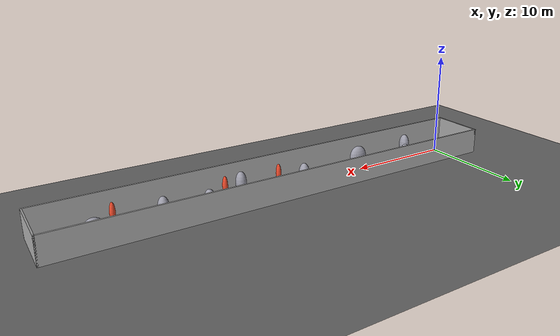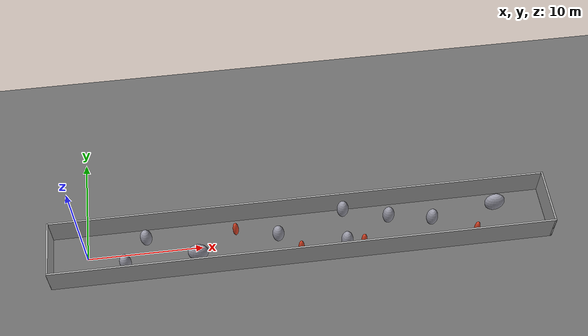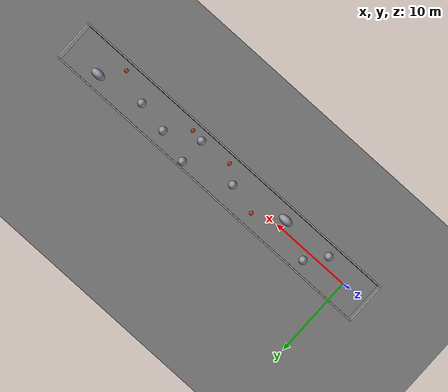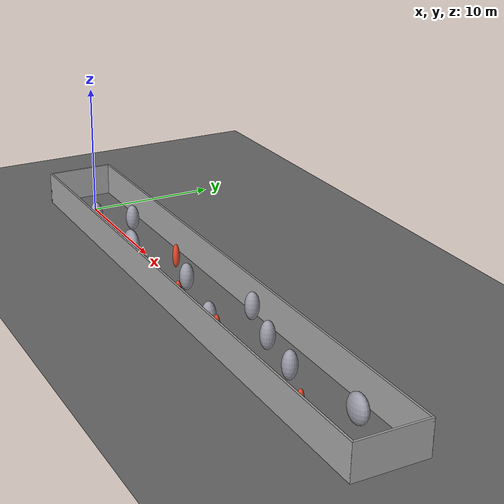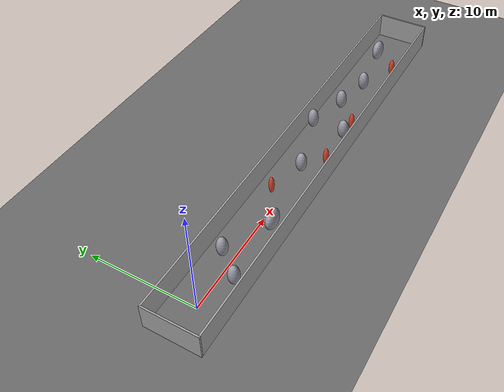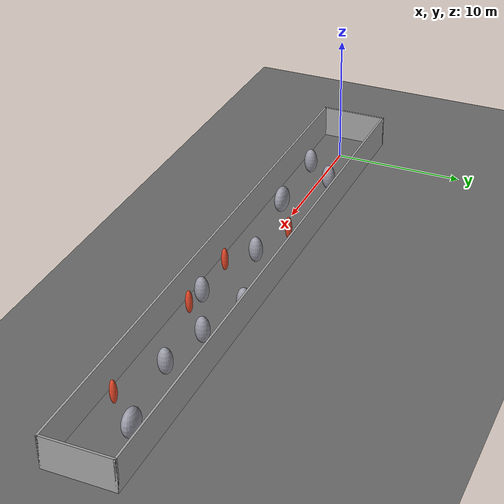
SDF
<?xml version="1.0"?>
<sdf version="1.10">
  <world name="my_rgl_corridor_dynamic_4">

    <plugin filename="gz-sim-physics-system" name="gz::sim::systems::Physics"/>
    <plugin filename="gz-sim-user-commands-system" name="gz::sim::systems::UserCommands"/>
    <plugin filename="gz-sim-scene-broadcaster-system" name="gz::sim::systems::SceneBroadcaster"/>
    <plugin filename="gz-sim-contact-system" name="gz::sim::systems::Contact"/>
    <plugin filename="gz-sim-imu-system" name="gz::sim::systems::Imu"/>
    <plugin filename="gz-sim-air-pressure-system" name="gz::sim::systems::AirPressure"/>
    <plugin filename="gz-sim-navsat-system" name="gz::sim::systems::NavSat"/>
    <plugin filename="gz-sim-magnetometer-system" name="gz::sim::systems::Magnetometer"/>
    <plugin filename="gz-sim-sensors-system" name="gz::sim::systems::Sensors">
      <render_engine>ogre2</render_engine>
    </plugin>
    <plugin filename="RGLServerPluginManager" name="rgl::RGLServerPluginManager">
      <do_ignore_entities_in_lidar_link>true</do_ignore_entities_in_lidar_link>
    </plugin>

    <physics name="ifds_250hz" type="ode">
      <max_step_size>0.004</max_step_size>
      <real_time_factor>1.0</real_time_factor>
      <real_time_update_rate>250</real_time_update_rate>
    </physics>
    <gravity>0 0 -9.8</gravity>
    <magnetic_field>6e-06 2.3e-05 -4.2e-05</magnetic_field>
    <atmosphere type="adiabatic"/>
    <scene>
      <grid>false</grid><ambient>0.4 0.4 0.4 1</ambient>
      <background>0.7 0.7 0.7 1</background><shadows>true</shadows>
    </scene>
    <light name="sun" type="directional">
      <pose>20 0 50 0 0 0</pose><cast_shadows>true</cast_shadows>
      <diffuse>0.9 0.9 0.9 1</diffuse><specular>0.2 0.2 0.2 1</specular>
      <direction>-0.4 0.2 -0.9</direction>
    </light>
    <model name="ground_plane">
      <static>true</static>
      <link name="link">
        <collision name="collision"><geometry><plane><normal>0 0 1</normal><size>100 100</size></plane></geometry></collision>
        <visual name="visual">
          <geometry><plane><normal>0 0 1</normal><size>100 100</size></plane></geometry>
          <material><ambient>0.30 0.30 0.30 1</ambient><diffuse>0.42 0.42 0.42 1</diffuse></material>
        </visual>
      </link>
    </model>

    <!-- Extended CERLAB corridor envelope: 43.725 m long, 5.15 m wide and 2.5 m high. -->

    <model name="corridor_wall_left">
      <static>true</static>
      <pose>18.7125 2.5 1.25 0 0 0</pose>
      <link name="link">
        <collision name="collision"><geometry><box><size>43.725 0.15 2.5</size></box></geometry></collision>
        <visual name="visual">
          <geometry><box><size>43.725 0.15 2.5</size></box></geometry>
          <material><ambient>0.55 0.55 0.55 1</ambient><diffuse>0.65 0.65 0.65 1</diffuse></material>
        </visual>
      </link>
    </model>

    <model name="corridor_wall_right">
      <static>true</static>
      <pose>18.7125 -2.5 1.25 0 0 0</pose>
      <link name="link">
        <collision name="collision"><geometry><box><size>43.725 0.15 2.5</size></box></geometry></collision>
        <visual name="visual">
          <geometry><box><size>43.725 0.15 2.5</size></box></geometry>
          <material><ambient>0.55 0.55 0.55 1</ambient><diffuse>0.65 0.65 0.65 1</diffuse></material>
        </visual>
      </link>
    </model>

    <model name="corridor_wall_start">
      <static>true</static>
      <pose>-3.075 0 1.25 0 0 0</pose>
      <link name="link">
        <collision name="collision"><geometry><box><size>0.15 5.15 2.5</size></box></geometry></collision>
        <visual name="visual">
          <geometry><box><size>0.15 5.15 2.5</size></box></geometry>
          <material><ambient>0.55 0.55 0.55 1</ambient><diffuse>0.65 0.65 0.65 1</diffuse></material>
        </visual>
      </link>
    </model>

    <model name="corridor_wall_end">
      <static>true</static>
      <pose>40.5 0 1.25 0 0 0</pose>
      <link name="link">
        <collision name="collision"><geometry><box><size>0.15 5.15 2.5</size></box></geometry></collision>
        <visual name="visual">
          <geometry><box><size>0.15 5.15 2.5</size></box></geometry>
          <material><ambient>0.55 0.55 0.55 1</ambient><diffuse>0.65 0.65 0.65 1</diffuse></material>
        </visual>
      </link>
    </model>

    <!-- CERLAB static boxes represented by smooth, bounding-size ellipsoids. -->

    <model name="static_obstacle_1">
      <static>true</static>
      <pose>3.32173 -1.210448 1.0 0 0 0</pose>
      <link name="link">
        <collision name="collision">
          <geometry><ellipsoid><radii>0.505 0.5 1.0</radii></ellipsoid></geometry>
        </collision>
        <visual name="visual">
          <geometry><ellipsoid><radii>0.505 0.5 1.0</radii></ellipsoid></geometry>
          <material><ambient>0.48 0.48 0.52 1</ambient><diffuse>0.60 0.60 0.65 1</diffuse></material>
        </visual>
      </link>
    </model>

    <model name="static_obstacle_2">
      <static>true</static>
      <pose>5.19162 1.03199 1.0 0 0 0</pose>
      <link name="link">
        <collision name="collision">
          <geometry><ellipsoid><radii>0.505 0.5 1.0</radii></ellipsoid></geometry>
        </collision>
        <visual name="visual">
          <geometry><ellipsoid><radii>0.505 0.5 1.0</radii></ellipsoid></geometry>
          <material><ambient>0.48 0.48 0.52 1</ambient><diffuse>0.60 0.60 0.65 1</diffuse></material>
        </visual>
      </link>
    </model>

    <model name="static_obstacle_3">
      <static>true</static>
      <pose>9.5971 -0.991291 1.0 0 0 0</pose>
      <link name="link">
        <collision name="collision">
          <geometry><ellipsoid><radii>0.9 0.5 1.0</radii></ellipsoid></geometry>
        </collision>
        <visual name="visual">
          <geometry><ellipsoid><radii>0.9 0.5 1.0</radii></ellipsoid></geometry>
          <material><ambient>0.48 0.48 0.52 1</ambient><diffuse>0.60 0.60 0.65 1</diffuse></material>
        </visual>
      </link>
    </model>

    <model name="static_obstacle_4">
      <static>true</static>
      <pose>16.6517 0.03953 1.0 0 0 0</pose>
      <link name="link">
        <collision name="collision">
          <geometry><ellipsoid><radii>0.505 0.5 1.0</radii></ellipsoid></geometry>
        </collision>
        <visual name="visual">
          <geometry><ellipsoid><radii>0.505 0.5 1.0</radii></ellipsoid></geometry>
          <material><ambient>0.48 0.48 0.52 1</ambient><diffuse>0.60 0.60 0.65 1</diffuse></material>
        </visual>
      </link>
    </model>

    <model name="static_obstacle_5">
      <static>true</static>
      <pose>22.5281 -1.287008 1.0 0 0 0</pose>
      <link name="link">
        <collision name="collision">
          <geometry><ellipsoid><radii>0.505 0.5 1.0</radii></ellipsoid></geometry>
        </collision>
        <visual name="visual">
          <geometry><ellipsoid><radii>0.505 0.5 1.0</radii></ellipsoid></geometry>
          <material><ambient>0.48 0.48 0.52 1</ambient><diffuse>0.60 0.60 0.65 1</diffuse></material>
        </visual>
      </link>
    </model>

    <model name="static_obstacle_6">
      <static>true</static>
      <pose>22.5815 1.86 1.0 0 0 0</pose>
      <link name="link">
        <collision name="collision">
          <geometry><ellipsoid><radii>0.505 0.5 1.0</radii></ellipsoid></geometry>
        </collision>
        <visual name="visual">
          <geometry><ellipsoid><radii>0.505 0.5 1.0</radii></ellipsoid></geometry>
          <material><ambient>0.48 0.48 0.52 1</ambient><diffuse>0.60 0.60 0.65 1</diffuse></material>
        </visual>
      </link>
    </model>

    <model name="static_obstacle_7">
      <static>true</static>
      <pose>26.5002 0.75131 1.0 0 0 0</pose>
      <link name="link">
        <collision name="collision">
          <geometry><ellipsoid><radii>0.505 0.5 1.0</radii></ellipsoid></geometry>
        </collision>
        <visual name="visual">
          <geometry><ellipsoid><radii>0.505 0.5 1.0</radii></ellipsoid></geometry>
          <material><ambient>0.48 0.48 0.52 1</ambient><diffuse>0.60 0.60 0.65 1</diffuse></material>
        </visual>
      </link>
    </model>

    <model name="static_obstacle_8">
      <static>true</static>
      <pose>30.2832 0.06 1.0 0 0 0</pose>
      <link name="link">
        <collision name="collision">
          <geometry><ellipsoid><radii>0.505 0.5 1.0</radii></ellipsoid></geometry>
        </collision>
        <visual name="visual">
          <geometry><ellipsoid><radii>0.505 0.5 1.0</radii></ellipsoid></geometry>
          <material><ambient>0.48 0.48 0.52 1</ambient><diffuse>0.60 0.60 0.65 1</diffuse></material>
        </visual>
      </link>
    </model>

    <model name="static_obstacle_9">
      <static>true</static>
      <pose>36.0874 0.92218 1.0 0 0 0</pose>
      <link name="link">
        <collision name="collision">
          <geometry><ellipsoid><radii>0.9 0.5 1.0</radii></ellipsoid></geometry>
        </collision>
        <visual name="visual">
          <geometry><ellipsoid><radii>0.9 0.5 1.0</radii></ellipsoid></geometry>
          <material><ambient>0.48 0.48 0.52 1</ambient><diffuse>0.60 0.60 0.65 1</diffuse></material>
        </visual>
      </link>
    </model>

    <!-- The four retained CERLAB actors use center-height poses for ellipsoids. -->

    <model name="dynamic_obstacle_3">
      <static>false</static>
      <pose>13 1 0.9 0 0 0</pose>
      <link name="link">
        <kinematic>true</kinematic>
        <gravity>false</gravity>
        <collision name="collision">
          <geometry><ellipsoid><radii>0.25 0.25 0.9</radii></ellipsoid></geometry>
        </collision>
        <visual name="visual">
          <geometry><ellipsoid><radii>0.25 0.25 0.9</radii></ellipsoid></geometry>
          <material><ambient>0.75 0.20 0.12 1</ambient><diffuse>0.90 0.28 0.16 1</diffuse></material>
        </visual>
      </link>
      <plugin filename="libifds_obstacle_path.so" name="ifds::sim::ObstaclePath">
        <start>13 1 0.9</start>
        <end>13 -1 0.9</end>
        <velocity>0.5</velocity>
      </plugin>
    </model>

    <model name="dynamic_obstacle_5">
      <static>false</static>
      <pose>18.5 -1.5 0.9 0 0 0</pose>
      <link name="link">
        <kinematic>true</kinematic>
        <gravity>false</gravity>
        <collision name="collision">
          <geometry><ellipsoid><radii>0.25 0.25 0.9</radii></ellipsoid></geometry>
        </collision>
        <visual name="visual">
          <geometry><ellipsoid><radii>0.25 0.25 0.9</radii></ellipsoid></geometry>
          <material><ambient>0.75 0.20 0.12 1</ambient><diffuse>0.90 0.28 0.16 1</diffuse></material>
        </visual>
      </link>
      <plugin filename="libifds_obstacle_path.so" name="ifds::sim::ObstaclePath">
        <start>18.5 -1.5 0.9</start>
        <end>18.5 1.5 0.9</end>
        <velocity>0.5</velocity>
      </plugin>
    </model>

    <model name="dynamic_obstacle_6">
      <static>false</static>
      <pose>24 -1.5 0.9 0 0 0</pose>
      <link name="link">
        <kinematic>true</kinematic>
        <gravity>false</gravity>
        <collision name="collision">
          <geometry><ellipsoid><radii>0.25 0.25 0.9</radii></ellipsoid></geometry>
        </collision>
        <visual name="visual">
          <geometry><ellipsoid><radii>0.25 0.25 0.9</radii></ellipsoid></geometry>
          <material><ambient>0.75 0.20 0.12 1</ambient><diffuse>0.90 0.28 0.16 1</diffuse></material>
        </visual>
      </link>
      <plugin filename="libifds_obstacle_path.so" name="ifds::sim::ObstaclePath">
        <start>24 -1.5 0.9</start>
        <end>27 -1.5 0.9</end>
        <velocity>0.5</velocity>
      </plugin>
    </model>

    <model name="dynamic_obstacle_8">
      <static>false</static>
      <pose>34 -1.5 0.9 0 0 0</pose>
      <link name="link">
        <kinematic>true</kinematic>
        <gravity>false</gravity>
        <collision name="collision">
          <geometry><ellipsoid><radii>0.25 0.25 0.9</radii></ellipsoid></geometry>
        </collision>
        <visual name="visual">
          <geometry><ellipsoid><radii>0.25 0.25 0.9</radii></ellipsoid></geometry>
          <material><ambient>0.75 0.20 0.12 1</ambient><diffuse>0.90 0.28 0.16 1</diffuse></material>
        </visual>
      </link>
      <plugin filename="libifds_obstacle_path.so" name="ifds::sim::ObstaclePath">
        <start>34 -1.5 0.9</start>
        <end>34 1.5 0.9</end>
        <velocity>0.5</velocity>
      </plugin>
    </model>

  </world>
</sdf>
